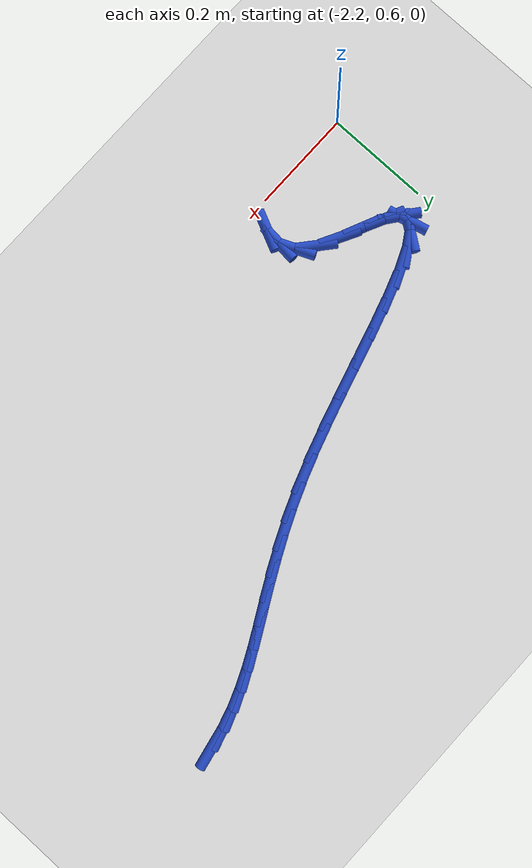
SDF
<sdf version="1.6">
 <world name="default">
  <model name="ground_plane">
   <static>1</static>
   <link name="link">
    <collision name="collision">
     <geometry><plane><normal>0 0 1</normal><size>100 100</size></plane></geometry>
     <surface><friction><ode><mu>100</mu><mu2>50</mu2></ode></friction></surface>
    </collision>
    <visual name="visual">
     <cast_shadows>0</cast_shadows>
     <geometry><plane><normal>0 0 1</normal><size>100 100</size></plane></geometry>
     <material>
      <script><uri>file://media/materials/scripts/gazebo.material</uri><name>Gazebo/WhiteGlow</name></script>
     </material>
    </visual>
   </link>
  </model>
  <model name="line">
   <link name="link_43">
    <pose>-1.209822662102155 1.1945601716765206 0.01 0 1.57 0.19961256746631506</pose>
    <collision name="collision">
     <geometry><cylinder><radius>0.01</radius><length>0.08</length></cylinder></geometry>
    </collision>
    <visual name="visual">
     <material>
      <script><name>Gazebo/Blue</name><uri>file://media/materials/scripts/gazebo.material</uri></script>
     </material>
     <geometry><cylinder><radius>0.01</radius><length>0.08</length></cylinder></geometry>
    </visual>
   </link>
   <link name="link_44">
    <pose>-1.2475063503512294 1.1869365085165675 0.01 0 1.57 0.28178966671346406</pose>
    <collision name="collision">
     <geometry><cylinder><radius>0.01</radius><length>0.08</length></cylinder></geometry>
    </collision>
    <visual name="visual">
     <material>
      <script><name>Gazebo/Blue</name><uri>file://media/materials/scripts/gazebo.material</uri></script>
     </material>
     <geometry><cylinder><radius>0.01</radius><length>0.08</length></cylinder></geometry>
    </visual>
   </link>
   <link name="link_45">
    <pose>-1.283316826397569 1.1765696272606374 0.01 0 1.57 0.3544273733527806</pose>
    <collision name="collision">
     <geometry><cylinder><radius>0.01</radius><length>0.08</length></cylinder></geometry>
    </collision>
    <visual name="visual">
     <material>
      <script><name>Gazebo/Blue</name><uri>file://media/materials/scripts/gazebo.material</uri></script>
     </material>
     <geometry><cylinder><radius>0.01</radius><length>0.08</length></cylinder></geometry>
    </visual>
   </link>
   <link name="link_46">
    <pose>-1.3178756400389573 1.163781001707937 0.01 0 1.57 0.41352533868249486</pose>
    <collision name="collision">
     <geometry><cylinder><radius>0.01</radius><length>0.08</length></cylinder></geometry>
    </collision>
    <visual name="visual">
     <material>
      <script><name>Gazebo/Blue</name><uri>file://media/materials/scripts/gazebo.material</uri></script>
     </material>
     <geometry><cylinder><radius>0.01</radius><length>0.08</length></cylinder></geometry>
    </visual>
   </link>
   <link name="link_47">
    <pose>-1.3518043410731768 1.1488921056576715 0.01 0 1.57 0.45672822138737235</pose>
    <collision name="collision">
     <geometry><cylinder><radius>0.01</radius><length>0.08</length></cylinder></geometry>
    </collision>
    <visual name="visual">
     <material>
      <script><name>Gazebo/Blue</name><uri>file://media/materials/scripts/gazebo.material</uri></script>
     </material>
     <geometry><cylinder><radius>0.01</radius><length>0.08</length></cylinder></geometry>
    </visual>
   </link>
   <link name="link_48">
    <pose>-1.3857244792980108 1.1322244129090475 0.01 0 1.57 0.4833363267304123</pose>
    <collision name="collision">
     <geometry><cylinder><radius>0.01</radius><length>0.08</length></cylinder></geometry>
    </collision>
    <visual name="visual">
     <material>
      <script><name>Gazebo/Blue</name><uri>file://media/materials/scripts/gazebo.material</uri></script>
     </material>
     <geometry><cylinder><radius>0.01</radius><length>0.08</length></cylinder></geometry>
    </visual>
   </link>
   <link name="link_49">
    <pose>-1.420257604511242 1.1140993972612707 0.01 0 1.57 0.49397072463543995</pose>
    <collision name="collision">
     <geometry><cylinder><radius>0.01</radius><length>0.08</length></cylinder></geometry>
    </collision>
    <visual name="visual">
     <material>
      <script><name>Gazebo/Blue</name><uri>file://media/materials/scripts/gazebo.material</uri></script>
     </material>
     <geometry><cylinder><radius>0.01</radius><length>0.08</length></cylinder></geometry>
    </visual>
   </link>
   <link name="link_50">
    <pose>-1.4560252665106543 1.0948385325135481 0.01 0 1.57 0.4901485263367006</pose>
    <collision name="collision">
     <geometry><cylinder><radius>0.01</radius><length>0.08</length></cylinder></geometry>
    </collision>
    <visual name="visual">
     <material>
      <script><name>Gazebo/Blue</name><uri>file://media/materials/scripts/gazebo.material</uri></script>
     </material>
     <geometry><cylinder><radius>0.01</radius><length>0.08</length></cylinder></geometry>
    </visual>
   </link>
   <link name="link_51">
    <pose>-1.4936490150940291 1.0747632924650845 0.01 0 1.57 0.47391705817769164</pose>
    <collision name="collision">
     <geometry><cylinder><radius>0.01</radius><length>0.08</length></cylinder></geometry>
    </collision>
    <visual name="visual">
     <material>
      <script><name>Gazebo/Blue</name><uri>file://media/materials/scripts/gazebo.material</uri></script>
     </material>
     <geometry><cylinder><radius>0.01</radius><length>0.08</length></cylinder></geometry>
    </visual>
   </link>
   <link name="link_52">
    <pose>-1.5337504000591498 1.0541951509150858 0.01 0 1.57 0.44758196495877295</pose>
    <collision name="collision">
     <geometry><cylinder><radius>0.01</radius><length>0.08</length></cylinder></geometry>
    </collision>
    <visual name="visual">
     <material>
      <script><name>Gazebo/Blue</name><uri>file://media/materials/scripts/gazebo.material</uri></script>
     </material>
     <geometry><cylinder><radius>0.01</radius><length>0.08</length></cylinder></geometry>
    </visual>
   </link>
   <link name="link_53">
    <pose>-1.5769509712037995 1.0334555816627593 0.01 0 1.57 0.4135091742636895</pose>
    <collision name="collision">
     <geometry><cylinder><radius>0.01</radius><length>0.08</length></cylinder></geometry>
    </collision>
    <visual name="visual">
     <material>
      <script><name>Gazebo/Blue</name><uri>file://media/materials/scripts/gazebo.material</uri></script>
     </material>
     <geometry><cylinder><radius>0.01</radius><length>0.08</length></cylinder></geometry>
    </visual>
   </link>
   <link name="link_54">
    <pose>-1.6238722783257606 1.01286605850731 0.01 0 1.57 0.37397420376765933</pose>
    <collision name="collision">
     <geometry><cylinder><radius>0.01</radius><length>0.08</length></cylinder></geometry>
    </collision>
    <visual name="visual">
     <material>
      <script><name>Gazebo/Blue</name><uri>file://media/materials/scripts/gazebo.material</uri></script>
     </material>
     <geometry><cylinder><radius>0.01</radius><length>0.08</length></cylinder></geometry>
    </visual>
   </link>
   <link name="link_55">
    <pose>-1.6751358712228175 0.9927480552479443 0.01 0 1.57 0.3319335956265296</pose>
    <collision name="collision">
     <geometry><cylinder><radius>0.01</radius><length>0.08</length></cylinder></geometry>
    </collision>
    <visual name="visual">
     <material>
      <script><name>Gazebo/Blue</name><uri>file://media/materials/scripts/gazebo.material</uri></script>
     </material>
     <geometry><cylinder><radius>0.01</radius><length>0.08</length></cylinder></geometry>
    </visual>
   </link>
   <link name="link_56">
    <pose>-1.7312525152095901 0.9734053914166045 0.01 0 1.57 0.29953487394537726</pose>
    <collision name="collision">
     <geometry><cylinder><radius>0.01</radius><length>0.08</length></cylinder></geometry>
    </collision>
    <visual name="visual">
     <material>
      <script><name>Gazebo/Blue</name><uri>file://media/materials/scripts/gazebo.material</uri></script>
     </material>
     <geometry><cylinder><radius>0.01</radius><length>0.08</length></cylinder></geometry>
    </visual>
   </link>
   <link name="link_57">
    <pose>-1.7911880640419027 0.9548956942917733 0.01 0 1.57 0.28135613155703276</pose>
    <collision name="collision">
     <geometry><cylinder><radius>0.01</radius><length>0.08</length></cylinder></geometry>
    </collision>
    <visual name="visual">
     <material>
      <script><name>Gazebo/Blue</name><uri>file://media/materials/scripts/gazebo.material</uri></script>
     </material>
     <geometry><cylinder><radius>0.01</radius><length>0.08</length></cylinder></geometry>
    </visual>
   </link>
   <link name="link_58">
    <pose>-1.8527742471496307 0.9370958606616221 0.01 0 1.57 0.27491223835747963</pose>
    <collision name="collision">
     <geometry><cylinder><radius>0.01</radius><length>0.08</length></cylinder></geometry>
    </collision>
    <visual name="visual">
     <material>
      <script><name>Gazebo/Blue</name><uri>file://media/materials/scripts/gazebo.material</uri></script>
     </material>
     <geometry><cylinder><radius>0.01</radius><length>0.08</length></cylinder></geometry>
    </visual>
   </link>
   <link name="link_59">
    <pose>-1.9138166355756276 0.9198786187959306 0.01 0 1.57 0.2799414968257923</pose>
    <collision name="collision">
     <geometry><cylinder><radius>0.01</radius><length>0.08</length></cylinder></geometry>
    </collision>
    <visual name="visual">
     <material>
      <script><name>Gazebo/Blue</name><uri>file://media/materials/scripts/gazebo.material</uri></script>
     </material>
     <geometry><cylinder><radius>0.01</radius><length>0.08</length></cylinder></geometry>
    </visual>
   </link>
   <link name="link_60">
    <pose>-1.9721208003627486 0.9031166969644774 0.01 0 1.57 0.298702083468043</pose>
    <collision name="collision">
     <geometry><cylinder><radius>0.01</radius><length>0.08</length></cylinder></geometry>
    </collision>
    <visual name="visual">
     <material>
      <script><name>Gazebo/Blue</name><uri>file://media/materials/scripts/gazebo.material</uri></script>
     </material>
     <geometry><cylinder><radius>0.01</radius><length>0.08</length></cylinder></geometry>
    </visual>
   </link>
   <link name="link_61">
    <pose>-2.0254923125538458 0.8866828234370421 0.01 0 1.57 0.3375904725033097</pose>
    <collision name="collision">
     <geometry><cylinder><radius>0.01</radius><length>0.08</length></cylinder></geometry>
    </collision>
    <visual name="visual">
     <material>
      <script><name>Gazebo/Blue</name><uri>file://media/materials/scripts/gazebo.material</uri></script>
     </material>
     <geometry><cylinder><radius>0.01</radius><length>0.08</length></cylinder></geometry>
    </visual>
   </link>
   <link name="link_62">
    <pose>-2.071736743191776 0.8704497264834042 0.01 0 1.57 0.4125426123595328</pose>
    <collision name="collision">
     <geometry><cylinder><radius>0.01</radius><length>0.08</length></cylinder></geometry>
    </collision>
    <visual name="visual">
     <material>
      <script><name>Gazebo/Blue</name><uri>file://media/materials/scripts/gazebo.material</uri></script>
     </material>
     <geometry><cylinder><radius>0.01</radius><length>0.08</length></cylinder></geometry>
    </visual>
   </link>
   <link name="link_63">
    <pose>-2.108659663319392 0.8542901343733422 0.01 0 1.57 0.5679967028160154</pose>
    <collision name="collision">
     <geometry><cylinder><radius>0.01</radius><length>0.08</length></cylinder></geometry>
    </collision>
    <visual name="visual">
     <material>
      <script><name>Gazebo/Blue</name><uri>file://media/materials/scripts/gazebo.material</uri></script>
     </material>
     <geometry><cylinder><radius>0.01</radius><length>0.08</length></cylinder></geometry>
    </visual>
   </link>
   <link name="link_64">
    <pose>-2.1340666439795486 0.838076775376636 0.01 0 1.57 0.9510992552978907</pose>
    <collision name="collision">
     <geometry><cylinder><radius>0.01</radius><length>0.08</length></cylinder></geometry>
    </collision>
    <visual name="visual">
     <material>
      <script><name>Gazebo/Blue</name><uri>file://media/materials/scripts/gazebo.material</uri></script>
     </material>
     <geometry><cylinder><radius>0.01</radius><length>0.08</length></cylinder></geometry>
    </visual>
   </link>
   <link name="link_65">
    <pose>-2.1457632562150994 0.8216823777630649 0.01 0 1.57 -1.323986710715559</pose>
    <collision name="collision">
     <geometry><cylinder><radius>0.01</radius><length>0.08</length></cylinder></geometry>
    </collision>
    <visual name="visual">
     <material>
      <script><name>Gazebo/Blue</name><uri>file://media/materials/scripts/gazebo.material</uri></script>
     </material>
     <geometry><cylinder><radius>0.01</radius><length>0.08</length></cylinder></geometry>
    </visual>
   </link>
   <link name="link_66">
    <pose>-2.141555071068899 0.8049796698024075 0.01 0 1.57 -0.6590671369497649</pose>
    <collision name="collision">
     <geometry><cylinder><radius>0.01</radius><length>0.08</length></cylinder></geometry>
    </collision>
    <visual name="visual">
     <material>
      <script><name>Gazebo/Blue</name><uri>file://media/materials/scripts/gazebo.material</uri></script>
     </material>
     <geometry><cylinder><radius>0.01</radius><length>0.08</length></cylinder></geometry>
    </visual>
   </link>
   <link name="link_67">
    <pose>-2.1194180693554636 0.7878320996513816 0.01 0 1.57 -0.4516246391196411</pose>
    <collision name="collision">
     <geometry><cylinder><radius>0.01</radius><length>0.08</length></cylinder></geometry>
    </collision>
    <visual name="visual">
     <material>
      <script><name>Gazebo/Blue</name><uri>file://media/materials/scripts/gazebo.material</uri></script>
     </material>
     <geometry><cylinder><radius>0.01</radius><length>0.08</length></cylinder></geometry>
    </visual>
   </link>
   <link name="link_68">
    <pose>-2.082308840861149 0.7698318832836751 0.01 0 1.57 -0.4229714235238776</pose>
    <collision name="collision">
     <geometry><cylinder><radius>0.01</radius><length>0.08</length></cylinder></geometry>
    </collision>
    <visual name="visual">
     <material>
      <script><name>Gazebo/Blue</name><uri>file://media/materials/scripts/gazebo.material</uri></script>
     </material>
     <geometry><cylinder><radius>0.01</radius><length>0.08</length></cylinder></geometry>
    </visual>
   </link>
   <link name="link_69">
    <pose>-2.0388369483066606 0.7502633891390199 0.01 0 1.57 -0.4908196747301984</pose>
    <collision name="collision">
     <geometry><cylinder><radius>0.01</radius><length>0.08</length></cylinder></geometry>
    </collision>
    <visual name="visual">
     <material>
      <script><name>Gazebo/Blue</name><uri>file://media/materials/scripts/gazebo.material</uri></script>
     </material>
     <geometry><cylinder><radius>0.01</radius><length>0.08</length></cylinder></geometry>
    </visual>
   </link>
   <link name="link_70">
    <pose>-1.9979175132839162 0.7283943456438182 0.01 0 1.57 -0.701595290917189</pose>
    <collision name="collision">
     <geometry><cylinder><radius>0.01</radius><length>0.08</length></cylinder></geometry>
    </collision>
    <visual name="visual">
     <material>
      <script><name>Gazebo/Blue</name><uri>file://media/materials/scripts/gazebo.material</uri></script>
     </material>
     <geometry><cylinder><radius>0.01</radius><length>0.08</length></cylinder></geometry>
    </visual>
   </link>
   <link name="link_71">
    <pose>-1.9684503607570212 0.7034940382974834 0.01 0 1.57 -1.1588446502538432</pose>
    <collision name="collision">
     <geometry><cylinder><radius>0.01</radius><length>0.08</length></cylinder></geometry>
    </collision>
    <visual name="visual">
     <material>
      <script><name>Gazebo/Blue</name><uri>file://media/materials/scripts/gazebo.material</uri></script>
     </material>
     <geometry><cylinder><radius>0.01</radius><length>0.08</length></cylinder></geometry>
    </visual>
   </link>
   <link name="link_72">
    <pose>-1.95607144525303 0.67516398821596 0.01 0 1.57 1.4739263779926324</pose>
    <collision name="collision">
     <geometry><cylinder><radius>0.01</radius><length>0.08</length></cylinder></geometry>
    </collision>
    <visual name="visual">
     <material>
      <script><name>Gazebo/Blue</name><uri>file://media/materials/scripts/gazebo.material</uri></script>
     </material>
     <geometry><cylinder><radius>0.01</radius><length>0.08</length></cylinder></geometry>
    </visual>
   </link>
   <link name="link_73">
    <pose>-1.9591242625063365 0.6437480298483136 0.01 0 1.57 1.135465738945898</pose>
    <collision name="collision">
     <geometry><cylinder><radius>0.01</radius><length>0.08</length></cylinder></geometry>
    </collision>
    <visual name="visual">
     <material>
      <script><name>Gazebo/Blue</name><uri>file://media/materials/scripts/gazebo.material</uri></script>
     </material>
     <geometry><cylinder><radius>0.01</radius><length>0.08</length></cylinder></geometry>
    </visual>
   </link>
  </model>
 </world>
</sdf>
